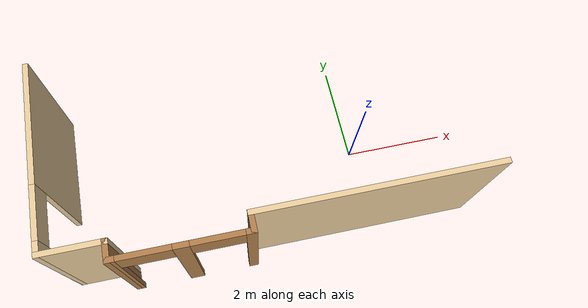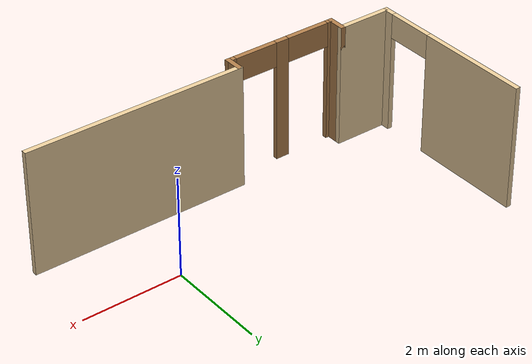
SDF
<sdf version="1.6">
 <model name="LawHall_Floor4.sdf">
  <link name="Wall_17">
   <pose>-0.2675 -1.5725 0 0 -0 3.14159</pose>
   <visual name="Wall_17_Visual">
    <pose>0 0 1.25 0 -0 0</pose>
    <geometry><box><size>4.445 0.1 2.5</size></box></geometry>
    <material>
     <script><uri>file://media/materials/scripts/gazebo.material</uri><name>Gazebo/Grey</name></script>
     <ambient>0.921569 0.807843 0.615686 1</ambient>
     <diffuse>0.7 0.7 0.7 1</diffuse>
     <specular>0.01 0.01 0.01 1</specular>
     <emissive>0 0 0 1</emissive>
    </material>
   </visual>
   <collision name="Wall_17_Collision">
    <pose>0 0 1.25 0 -0 0</pose>
    <geometry><box><size>4.445 0.1 2.5</size></box></geometry>
    <surface>
     <friction>
      <ode><mu>1</mu><mu2>1</mu2><fdir1>0 0 0</fdir1><slip1>0</slip1><slip2>0</slip2></ode>
      <torsional>
       <coefficient>1</coefficient>
       <patch_radius>0</patch_radius>
       <surface_radius>0</surface_radius>
       <use_patch_radius>1</use_patch_radius>
       <ode><slip>0</slip></ode>
      </torsional>
     </friction>
     <bounce><restitution_coefficient>0</restitution_coefficient><threshold>1e+06</threshold></bounce>
     <contact>
      <collide_without_contact>0</collide_without_contact>
      <collide_without_contact_bitmask>1</collide_without_contact_bitmask>
      <collide_bitmask>1</collide_bitmask>
      <ode>
       <soft_cfm>0</soft_cfm>
       <soft_erp>0.2</soft_erp>
       <kp>1e+13</kp>
       <kd>1</kd>
       <max_vel>0.01</max_vel>
       <min_depth>0</min_depth>
      </ode>
      <bullet>
       <split_impulse>1</split_impulse>
       <split_impulse_penetration_threshold>-0.01</split_impulse_penetration_threshold>
       <soft_cfm>0</soft_cfm>
       <soft_erp>0.2</soft_erp>
       <kp>1e+13</kp>
       <kd>1</kd>
      </bullet>
     </contact>
    </surface>
   </collision>
  </link>
  <link name="Wall_19">
   <pose>-2.44 -1.725 0 0 0 -1.5708</pose>
   <visual name="Wall_19_Visual">
    <pose>0 0 1.25 0 -0 0</pose>
    <geometry><box><size>0.405 0.1 2.5</size></box></geometry>
    <material>
     <script><uri>file://media/materials/scripts/gazebo.material</uri><name>Gazebo/Wood</name></script>
     <ambient>1 1 1 1</ambient>
     <diffuse>1 1 1 1</diffuse>
     <specular>0.2 0.2 0.2 1</specular>
     <emissive>0 0 0 1</emissive>
    </material>
   </visual>
   <collision name="Wall_19_Collision">
    <pose>0 0 1.25 0 -0 0</pose>
    <geometry><box><size>0.405 0.1 2.5</size></box></geometry>
    <surface>
     <friction>
      <ode><mu>1</mu><mu2>1</mu2><fdir1>0 0 0</fdir1><slip1>0</slip1><slip2>0</slip2></ode>
      <torsional>
       <coefficient>1</coefficient>
       <patch_radius>0</patch_radius>
       <surface_radius>0</surface_radius>
       <use_patch_radius>1</use_patch_radius>
       <ode><slip>0</slip></ode>
      </torsional>
     </friction>
     <bounce><restitution_coefficient>0</restitution_coefficient><threshold>1e+06</threshold></bounce>
     <contact>
      <collide_without_contact>0</collide_without_contact>
      <collide_without_contact_bitmask>1</collide_without_contact_bitmask>
      <collide_bitmask>1</collide_bitmask>
      <ode>
       <soft_cfm>0</soft_cfm>
       <soft_erp>0.2</soft_erp>
       <kp>1e+13</kp>
       <kd>1</kd>
       <max_vel>0.01</max_vel>
       <min_depth>0</min_depth>
      </ode>
      <bullet>
       <split_impulse>1</split_impulse>
       <split_impulse_penetration_threshold>-0.01</split_impulse_penetration_threshold>
       <soft_cfm>0</soft_cfm>
       <soft_erp>0.2</soft_erp>
       <kp>1e+13</kp>
       <kd>1</kd>
      </bullet>
     </contact>
    </surface>
   </collision>
  </link>
  <link name="Wall_2">
   <pose>-5.826 0.1525 0 0 0 -1.5708</pose>
   <visual name="Wall_2_Visual_0">
    <pose>-0.61409 0 1.25 0 -0 0</pose>
    <geometry><box><size>2.32182 0.1 2.5</size></box></geometry>
    <material>
     <script><uri>file://media/materials/scripts/gazebo.material</uri><name>Gazebo/Grey</name></script>
     <ambient>0.921569 0.807843 0.615686 1</ambient>
     <diffuse>0.7 0.7 0.7 1</diffuse>
     <specular>0.01 0.01 0.01 1</specular>
     <emissive>0 0 0 1</emissive>
    </material>
   </visual>
   <visual name="Wall_2_Visual_1">
    <pose>1.63741 0 1.25 0 -0 0</pose>
    <geometry><box><size>0.27518 0.1 2.5</size></box></geometry>
    <material>
     <script><uri>file://media/materials/scripts/gazebo.material</uri><name>Gazebo/Grey</name></script>
     <ambient>0.921569 0.807843 0.615686 1</ambient>
     <diffuse>0.7 0.7 0.7 1</diffuse>
     <specular>0.01 0.01 0.01 1</specular>
     <emissive>0 0 0 1</emissive>
    </material>
   </visual>
   <visual name="Wall_2_Visual_2">
    <pose>1.02332 0 2.25 0 -0 0</pose>
    <geometry><box><size>0.953 0.1 0.5</size></box></geometry>
    <material>
     <script><uri>file://media/materials/scripts/gazebo.material</uri><name>Gazebo/Grey</name></script>
     <ambient>0.921569 0.807843 0.615686 1</ambient>
     <diffuse>0.7 0.7 0.7 1</diffuse>
     <specular>0.01 0.01 0.01 1</specular>
     <emissive>0 0 0 1</emissive>
    </material>
   </visual>
   <collision name="Wall_2_Collision_1">
    <pose>1.63741 0 1.25 0 -0 0</pose>
    <geometry><box><size>0.27518 0.1 2.5</size></box></geometry>
    <surface>
     <friction>
      <ode><mu>1</mu><mu2>1</mu2><fdir1>0 0 0</fdir1><slip1>0</slip1><slip2>0</slip2></ode>
      <torsional>
       <coefficient>1</coefficient>
       <patch_radius>0</patch_radius>
       <surface_radius>0</surface_radius>
       <use_patch_radius>1</use_patch_radius>
       <ode><slip>0</slip></ode>
      </torsional>
     </friction>
     <bounce><restitution_coefficient>0</restitution_coefficient><threshold>1e+06</threshold></bounce>
     <contact>
      <collide_without_contact>0</collide_without_contact>
      <collide_without_contact_bitmask>1</collide_without_contact_bitmask>
      <collide_bitmask>1</collide_bitmask>
      <ode>
       <soft_cfm>0</soft_cfm>
       <soft_erp>0.2</soft_erp>
       <kp>1e+13</kp>
       <kd>1</kd>
       <max_vel>0.01</max_vel>
       <min_depth>0</min_depth>
      </ode>
      <bullet>
       <split_impulse>1</split_impulse>
       <split_impulse_penetration_threshold>-0.01</split_impulse_penetration_threshold>
       <soft_cfm>0</soft_cfm>
       <soft_erp>0.2</soft_erp>
       <kp>1e+13</kp>
       <kd>1</kd>
      </bullet>
     </contact>
    </surface>
   </collision>
   <collision name="Wall_2_Collision_2">
    <pose>1.02332 0 2.25 0 -0 0</pose>
    <geometry><box><size>0.953 0.1 0.5</size></box></geometry>
    <surface>
     <friction>
      <ode><mu>1</mu><mu2>1</mu2><fdir1>0 0 0</fdir1><slip1>0</slip1><slip2>0</slip2></ode>
      <torsional>
       <coefficient>1</coefficient>
       <patch_radius>0</patch_radius>
       <surface_radius>0</surface_radius>
       <use_patch_radius>1</use_patch_radius>
       <ode><slip>0</slip></ode>
      </torsional>
     </friction>
     <bounce><restitution_coefficient>0</restitution_coefficient><threshold>1e+06</threshold></bounce>
     <contact>
      <collide_without_contact>0</collide_without_contact>
      <collide_without_contact_bitmask>1</collide_without_contact_bitmask>
      <collide_bitmask>1</collide_bitmask>
      <ode>
       <soft_cfm>0</soft_cfm>
       <soft_erp>0.2</soft_erp>
       <kp>1e+13</kp>
       <kd>1</kd>
       <max_vel>0.01</max_vel>
       <min_depth>0</min_depth>
      </ode>
      <bullet>
       <split_impulse>1</split_impulse>
       <split_impulse_penetration_threshold>-0.01</split_impulse_penetration_threshold>
       <soft_cfm>0</soft_cfm>
       <soft_erp>0.2</soft_erp>
       <kp>1e+13</kp>
       <kd>1</kd>
      </bullet>
     </contact>
    </surface>
   </collision>
   <collision name="Wall_2_Collision_0">
    <pose>-0.61409 0 1.25 0 -0 0</pose>
    <geometry><box><size>2.32182 0.1 2.5</size></box></geometry>
    <surface>
     <friction>
      <ode><mu>1</mu><mu2>1</mu2><fdir1>0 0 0</fdir1><slip1>0</slip1><slip2>0</slip2></ode>
      <torsional>
       <coefficient>1</coefficient>
       <patch_radius>0</patch_radius>
       <surface_radius>0</surface_radius>
       <use_patch_radius>1</use_patch_radius>
       <ode><slip>0</slip></ode>
      </torsional>
     </friction>
     <bounce><restitution_coefficient>0</restitution_coefficient><threshold>1e+06</threshold></bounce>
     <contact>
      <collide_without_contact>0</collide_without_contact>
      <collide_without_contact_bitmask>1</collide_without_contact_bitmask>
      <collide_bitmask>1</collide_bitmask>
      <ode>
       <soft_cfm>0</soft_cfm>
       <soft_erp>0.2</soft_erp>
       <kp>1e+13</kp>
       <kd>1</kd>
       <max_vel>0.01</max_vel>
       <min_depth>0</min_depth>
      </ode>
      <bullet>
       <split_impulse>1</split_impulse>
       <split_impulse_penetration_threshold>-0.01</split_impulse_penetration_threshold>
       <soft_cfm>0</soft_cfm>
       <soft_erp>0.2</soft_erp>
       <kp>1e+13</kp>
       <kd>1</kd>
      </bullet>
     </contact>
    </surface>
   </collision>
  </link>
  <link name="Wall_21">
   <pose>-3.6015 -1.8775 0 0 -0 3.14159</pose>
   <visual name="Wall_21_Visual_2">
    <pose>1.12777 0 1.25 0 -0 0</pose>
    <geometry><box><size>0.167454 0.1 2.5</size></box></geometry>
    <material>
     <script><uri>file://media/materials/scripts/gazebo.material</uri><name>Gazebo/Wood</name></script>
     <ambient>1 1 1 1</ambient>
     <diffuse>1 1 1 1</diffuse>
     <specular>0.2 0.2 0.2 1</specular>
     <emissive>0 0 0 1</emissive>
    </material>
   </visual>
   <visual name="Wall_21_Visual_3">
    <pose>-0.578954 0 2.25 0 -0 0</pose>
    <geometry><box><size>0.9 0.1 0.5</size></box></geometry>
    <material>
     <script><uri>file://media/materials/scripts/gazebo.material</uri><name>Gazebo/Wood</name></script>
     <ambient>1 1 1 1</ambient>
     <diffuse>1 1 1 1</diffuse>
     <specular>0.2 0.2 0.2 1</specular>
     <emissive>0 0 0 1</emissive>
    </material>
   </visual>
   <visual name="Wall_21_Visual_4">
    <pose>0.594046 0 2.25 0 -0 0</pose>
    <geometry><box><size>0.9 0.1 0.5</size></box></geometry>
    <material>
     <script><uri>file://media/materials/scripts/gazebo.material</uri><name>Gazebo/Wood</name></script>
     <ambient>1 1 1 1</ambient>
     <diffuse>1 1 1 1</diffuse>
     <specular>0.2 0.2 0.2 1</specular>
     <emissive>0 0 0 1</emissive>
    </material>
   </visual>
   <visual name="Wall_21_Visual_0">
    <pose>-1.12023 0 1.25 0 -0 0</pose>
    <geometry><box><size>0.182546 0.1 2.5</size></box></geometry>
    <material>
     <script><uri>file://media/materials/scripts/gazebo.material</uri><name>Gazebo/Wood</name></script>
     <ambient>1 1 1 1</ambient>
     <diffuse>1 1 1 1</diffuse>
     <specular>0.2 0.2 0.2 1</specular>
     <emissive>0 0 0 1</emissive>
    </material>
   </visual>
   <visual name="Wall_21_Visual_1">
    <pose>0.007546 0 1.25 0 -0 0</pose>
    <geometry><box><size>0.273 0.1 2.5</size></box></geometry>
    <material>
     <script><uri>file://media/materials/scripts/gazebo.material</uri><name>Gazebo/Wood</name></script>
     <ambient>1 1 1 1</ambient>
     <diffuse>1 1 1 1</diffuse>
     <specular>0.2 0.2 0.2 1</specular>
     <emissive>0 0 0 1</emissive>
    </material>
   </visual>
   <collision name="Wall_21_Collision_0">
    <pose>-1.12023 0 1.25 0 -0 0</pose>
    <geometry><box><size>0.182546 0.1 2.5</size></box></geometry>
    <surface>
     <friction>
      <ode><mu>1</mu><mu2>1</mu2><fdir1>0 0 0</fdir1><slip1>0</slip1><slip2>0</slip2></ode>
      <torsional>
       <coefficient>1</coefficient>
       <patch_radius>0</patch_radius>
       <surface_radius>0</surface_radius>
       <use_patch_radius>1</use_patch_radius>
       <ode><slip>0</slip></ode>
      </torsional>
     </friction>
     <bounce><restitution_coefficient>0</restitution_coefficient><threshold>1e+06</threshold></bounce>
     <contact>
      <collide_without_contact>0</collide_without_contact>
      <collide_without_contact_bitmask>1</collide_without_contact_bitmask>
      <collide_bitmask>1</collide_bitmask>
      <ode>
       <soft_cfm>0</soft_cfm>
       <soft_erp>0.2</soft_erp>
       <kp>1e+13</kp>
       <kd>1</kd>
       <max_vel>0.01</max_vel>
       <min_depth>0</min_depth>
      </ode>
      <bullet>
       <split_impulse>1</split_impulse>
       <split_impulse_penetration_threshold>-0.01</split_impulse_penetration_threshold>
       <soft_cfm>0</soft_cfm>
       <soft_erp>0.2</soft_erp>
       <kp>1e+13</kp>
       <kd>1</kd>
      </bullet>
     </contact>
    </surface>
   </collision>
   <collision name="Wall_21_Collision_1">
    <pose>0.007546 0 1.25 0 -0 0</pose>
    <geometry><box><size>0.273 0.1 2.5</size></box></geometry>
    <surface>
     <friction>
      <ode><mu>1</mu><mu2>1</mu2><fdir1>0 0 0</fdir1><slip1>0</slip1><slip2>0</slip2></ode>
      <torsional>
       <coefficient>1</coefficient>
       <patch_radius>0</patch_radius>
       <surface_radius>0</surface_radius>
       <use_patch_radius>1</use_patch_radius>
       <ode><slip>0</slip></ode>
      </torsional>
     </friction>
     <bounce><restitution_coefficient>0</restitution_coefficient><threshold>1e+06</threshold></bounce>
     <contact>
      <collide_without_contact>0</collide_without_contact>
      <collide_without_contact_bitmask>1</collide_without_contact_bitmask>
      <collide_bitmask>1</collide_bitmask>
      <ode>
       <soft_cfm>0</soft_cfm>
       <soft_erp>0.2</soft_erp>
       <kp>1e+13</kp>
       <kd>1</kd>
       <max_vel>0.01</max_vel>
       <min_depth>0</min_depth>
      </ode>
      <bullet>
       <split_impulse>1</split_impulse>
       <split_impulse_penetration_threshold>-0.01</split_impulse_penetration_threshold>
       <soft_cfm>0</soft_cfm>
       <soft_erp>0.2</soft_erp>
       <kp>1e+13</kp>
       <kd>1</kd>
      </bullet>
     </contact>
    </surface>
   </collision>
   <collision name="Wall_21_Collision_2">
    <pose>1.12777 0 1.25 0 -0 0</pose>
    <geometry><box><size>0.167454 0.1 2.5</size></box></geometry>
    <surface>
     <friction>
      <ode><mu>1</mu><mu2>1</mu2><fdir1>0 0 0</fdir1><slip1>0</slip1><slip2>0</slip2></ode>
      <torsional>
       <coefficient>1</coefficient>
       <patch_radius>0</patch_radius>
       <surface_radius>0</surface_radius>
       <use_patch_radius>1</use_patch_radius>
       <ode><slip>0</slip></ode>
      </torsional>
     </friction>
     <bounce><restitution_coefficient>0</restitution_coefficient><threshold>1e+06</threshold></bounce>
     <contact>
      <collide_without_contact>0</collide_without_contact>
      <collide_without_contact_bitmask>1</collide_without_contact_bitmask>
      <collide_bitmask>1</collide_bitmask>
      <ode>
       <soft_cfm>0</soft_cfm>
       <soft_erp>0.2</soft_erp>
       <kp>1e+13</kp>
       <kd>1</kd>
       <max_vel>0.01</max_vel>
       <min_depth>0</min_depth>
      </ode>
      <bullet>
       <split_impulse>1</split_impulse>
       <split_impulse_penetration_threshold>-0.01</split_impulse_penetration_threshold>
       <soft_cfm>0</soft_cfm>
       <soft_erp>0.2</soft_erp>
       <kp>1e+13</kp>
       <kd>1</kd>
      </bullet>
     </contact>
    </surface>
   </collision>
   <collision name="Wall_21_Collision_3">
    <pose>-0.578954 0 2.25 0 -0 0</pose>
    <geometry><box><size>0.9 0.1 0.5</size></box></geometry>
    <surface>
     <friction>
      <ode><mu>1</mu><mu2>1</mu2><fdir1>0 0 0</fdir1><slip1>0</slip1><slip2>0</slip2></ode>
      <torsional>
       <coefficient>1</coefficient>
       <patch_radius>0</patch_radius>
       <surface_radius>0</surface_radius>
       <use_patch_radius>1</use_patch_radius>
       <ode><slip>0</slip></ode>
      </torsional>
     </friction>
     <bounce><restitution_coefficient>0</restitution_coefficient><threshold>1e+06</threshold></bounce>
     <contact>
      <collide_without_contact>0</collide_without_contact>
      <collide_without_contact_bitmask>1</collide_without_contact_bitmask>
      <collide_bitmask>1</collide_bitmask>
      <ode>
       <soft_cfm>0</soft_cfm>
       <soft_erp>0.2</soft_erp>
       <kp>1e+13</kp>
       <kd>1</kd>
       <max_vel>0.01</max_vel>
       <min_depth>0</min_depth>
      </ode>
      <bullet>
       <split_impulse>1</split_impulse>
       <split_impulse_penetration_threshold>-0.01</split_impulse_penetration_threshold>
       <soft_cfm>0</soft_cfm>
       <soft_erp>0.2</soft_erp>
       <kp>1e+13</kp>
       <kd>1</kd>
      </bullet>
     </contact>
    </surface>
   </collision>
   <collision name="Wall_21_Collision_4">
    <pose>0.594046 0 2.25 0 -0 0</pose>
    <geometry><box><size>0.9 0.1 0.5</size></box></geometry>
    <surface>
     <friction>
      <ode><mu>1</mu><mu2>1</mu2><fdir1>0 0 0</fdir1><slip1>0</slip1><slip2>0</slip2></ode>
      <torsional>
       <coefficient>1</coefficient>
       <patch_radius>0</patch_radius>
       <surface_radius>0</surface_radius>
       <use_patch_radius>1</use_patch_radius>
       <ode><slip>0</slip></ode>
      </torsional>
     </friction>
     <bounce><restitution_coefficient>0</restitution_coefficient><threshold>1e+06</threshold></bounce>
     <contact>
      <collide_without_contact>0</collide_without_contact>
      <collide_without_contact_bitmask>1</collide_without_contact_bitmask>
      <collide_bitmask>1</collide_bitmask>
      <ode>
       <soft_cfm>0</soft_cfm>
       <soft_erp>0.2</soft_erp>
       <kp>1e+13</kp>
       <kd>1</kd>
       <max_vel>0.01</max_vel>
       <min_depth>0</min_depth>
      </ode>
      <bullet>
       <split_impulse>1</split_impulse>
       <split_impulse_penetration_threshold>-0.01</split_impulse_penetration_threshold>
       <soft_cfm>0</soft_cfm>
       <soft_erp>0.2</soft_erp>
       <kp>1e+13</kp>
       <kd>1</kd>
      </bullet>
     </contact>
    </surface>
   </collision>
  </link>
  <link name="Wall_23">
   <pose>-4.763 -1.725 0 0 -0 1.5708</pose>
   <visual name="Wall_23_Visual">
    <pose>0 0 1.25 0 -0 0</pose>
    <geometry><box><size>0.405 0.1 2.5</size></box></geometry>
    <material>
     <script><uri>file://media/materials/scripts/gazebo.material</uri><name>Gazebo/Wood</name></script>
     <ambient>1 1 1 1</ambient>
     <diffuse>1 1 1 1</diffuse>
     <specular>0.2 0.2 0.2 1</specular>
     <emissive>0 0 0 1</emissive>
    </material>
   </visual>
   <collision name="Wall_23_Collision">
    <pose>0 0 1.25 0 -0 0</pose>
    <geometry><box><size>0.405 0.1 2.5</size></box></geometry>
    <surface>
     <friction>
      <ode><mu>1</mu><mu2>1</mu2><fdir1>0 0 0</fdir1><slip1>0</slip1><slip2>0</slip2></ode>
      <torsional>
       <coefficient>1</coefficient>
       <patch_radius>0</patch_radius>
       <surface_radius>0</surface_radius>
       <use_patch_radius>1</use_patch_radius>
       <ode><slip>0</slip></ode>
      </torsional>
     </friction>
     <bounce><restitution_coefficient>0</restitution_coefficient><threshold>1e+06</threshold></bounce>
     <contact>
      <collide_without_contact>0</collide_without_contact>
      <collide_without_contact_bitmask>1</collide_without_contact_bitmask>
      <collide_bitmask>1</collide_bitmask>
      <ode>
       <soft_cfm>0</soft_cfm>
       <soft_erp>0.2</soft_erp>
       <kp>1e+13</kp>
       <kd>1</kd>
       <max_vel>0.01</max_vel>
       <min_depth>0</min_depth>
      </ode>
      <bullet>
       <split_impulse>1</split_impulse>
       <split_impulse_penetration_threshold>-0.01</split_impulse_penetration_threshold>
       <soft_cfm>0</soft_cfm>
       <soft_erp>0.2</soft_erp>
       <kp>1e+13</kp>
       <kd>1</kd>
      </bullet>
     </contact>
    </surface>
   </collision>
  </link>
  <link name="Wall_27">
   <pose>-5.2945 -1.5725 0 0 -0 0</pose>
   <visual name="Wall_27_Visual">
    <pose>0 0 1.25 0 -0 0</pose>
    <geometry><box><size>1.163 0.1 2.5</size></box></geometry>
    <material>
     <script><uri>file://media/materials/scripts/gazebo.material</uri><name>Gazebo/Grey</name></script>
     <ambient>0.921569 0.807843 0.615686 1</ambient>
     <diffuse>0.7 0.7 0.7 1</diffuse>
     <specular>0.01 0.01 0.01 1</specular>
     <emissive>0 0 0 1</emissive>
    </material>
   </visual>
   <collision name="Wall_27_Collision">
    <pose>0 0 1.25 0 -0 0</pose>
    <geometry><box><size>1.163 0.1 2.5</size></box></geometry>
    <surface>
     <friction>
      <ode><mu>1</mu><mu2>1</mu2><fdir1>0 0 0</fdir1><slip1>0</slip1><slip2>0</slip2></ode>
      <torsional>
       <coefficient>1</coefficient>
       <patch_radius>0</patch_radius>
       <surface_radius>0</surface_radius>
       <use_patch_radius>1</use_patch_radius>
       <ode><slip>0</slip></ode>
      </torsional>
     </friction>
     <bounce><restitution_coefficient>0</restitution_coefficient><threshold>1e+06</threshold></bounce>
     <contact>
      <collide_without_contact>0</collide_without_contact>
      <collide_without_contact_bitmask>1</collide_without_contact_bitmask>
      <collide_bitmask>1</collide_bitmask>
      <ode>
       <soft_cfm>0</soft_cfm>
       <soft_erp>0.2</soft_erp>
       <kp>1e+13</kp>
       <kd>1</kd>
       <max_vel>0.01</max_vel>
       <min_depth>0</min_depth>
      </ode>
      <bullet>
       <split_impulse>1</split_impulse>
       <split_impulse_penetration_threshold>-0.01</split_impulse_penetration_threshold>
       <soft_cfm>0</soft_cfm>
       <soft_erp>0.2</soft_erp>
       <kp>1e+13</kp>
       <kd>1</kd>
      </bullet>
     </contact>
    </surface>
   </collision>
  </link>
  <static>1</static>
 </model>
</sdf>
